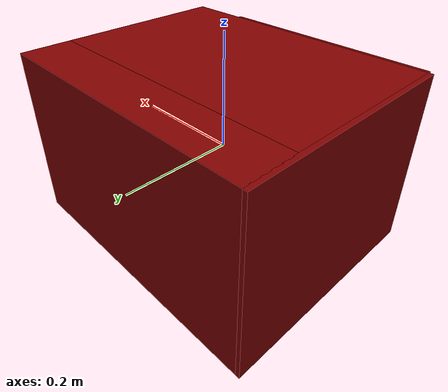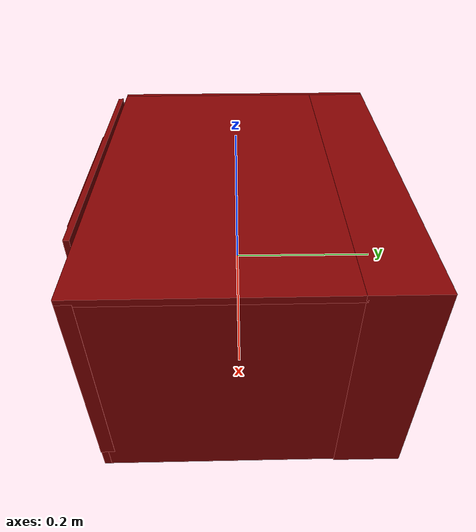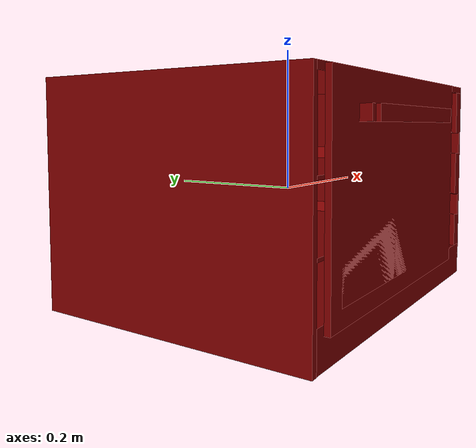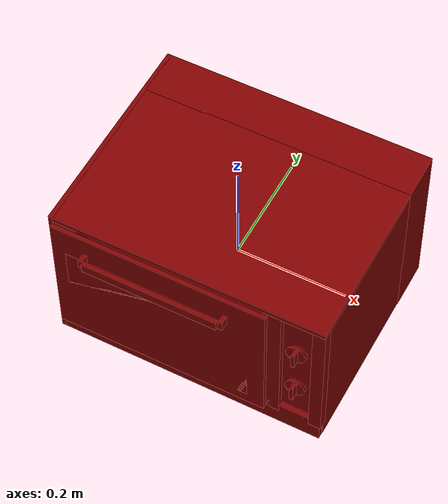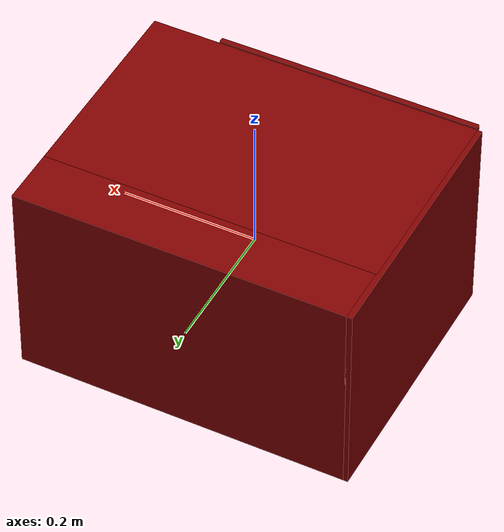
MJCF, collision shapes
<?xml version='1.0' encoding='UTF-8'?>
<mujoco model="model">
  <option timestep="0.002" gravity="0.0 0.0 -9.81"/>
  <compiler angle="radian"/>
  <asset>
    <mesh file="visuals/door.obj" name="door_vis"/>
    <mesh file="visuals/knob_temp.obj" name="knob_temp_vis"/>
    <mesh file="visuals/knob_time.obj" name="knob_time_vis"/>
    <mesh file="visuals/rack0.obj" name="rack0_vis"/>
    <mesh file="visuals/rack1.obj" name="rack1_vis"/>
    <mesh file="visuals/Body001.obj" name="Body001_vis"/>
    <mesh file="visuals/window.obj" name="window_vis"/>
    <texture file="visuals/T_BC001.png" name="Body001_material" type="2d"/>
    <material name="Body001_material" rgba="1 1 1 1.0" texture="Body001_material" shininess="0.141421377658844" specular="2"/>
    <texture file="visuals/T_BC001.png" name="door_material" type="2d"/>
    <material name="door_material" rgba="1 1 1 1.0" texture="door_material" shininess="0.141421377658844" specular="1"/>
    <texture file="visuals/T_BC001.png" name="window_material" type="2d"/>
    <material name="window_material" rgba="1 1 1 0.800000011920929" texture="window_material" shininess="0.5" specular="0.3103448502657381"/>
    <texture file="visuals/T_BC001.png" name="knob_temp_material" type="2d"/>
    <material name="knob_temp_material" rgba="1 1 1 1.0" texture="knob_temp_material" shininess="0.141421377658844" specular="0.3103448502657381"/>
    <texture file="visuals/T_BC001.png" name="knob_time_material" type="2d"/>
    <material name="knob_time_material" rgba="1 1 1 1.0" texture="knob_time_material" shininess="0.141421377658844" specular="0.3103448502657381"/>
    <texture file="visuals/T_BC001.png" name="rack0_material" type="2d"/>
    <material name="rack0_material" rgba="1 1 1 1.0" texture="rack0_material" shininess="0.141421377658844" specular="2"/>
    <texture file="visuals/T_BC001.png" name="rack1_material" type="2d"/>
    <material name="rack1_material" rgba="1 1 1 1.0" texture="rack1_material" shininess="0.141421377658844" specular="2"/>
  </asset>
  <default>
    <default class="visual">
      <geom conaffinity="0" contype="0" group="1" type="mesh"/>
    </default>
    <default class="collision">
      <geom group="0" rgba="0.5 0 0 0.5"/>
    </default>
    <default class="spawn">
      <geom group="0" rgba="1 1 1 0.5" contype="0" conaffinity="0"/>
      <site group="0" rgba="1 1 1 0.5"/>
    </default>
    <default class="region">
      <geom group="1" conaffinity="0" contype="0" rgba="0 1 0 0"/>
    </default>
  </default>
  <worldbody>
    <body>
      <body name="object">
        <geom mesh="Body001_vis" type="mesh" solimp="0.998 0.998 0.001" solref="0.001 1" friction="0.95 0.3 0.1" class="visual" material="Body001_material"/>
        <geom class="collision" type="box" pos="-0.2441130429506302 0.016248559579253197 5.9958576457574964e-05" size="0.00419982336461544 0.19757267832756042 0.15339186787605286" quat="1.0 0.0 0.0 0.0"/>
        <geom class="collision" type="box" pos="0.0035577856469899416 0.16968154907226562 5.9958576457574964e-05" size="0.24486888945102692 0.04413968697190285 0.15339186787605286" quat="1.0 0.0 0.0 0.0"/>
        <geom class="collision" type="box" pos="0.19376103579998016 -0.021811120212078094 -0.0015165776712819934" size="0.054665617644786835 0.14970235526561737 0.1484030783176422" quat="1.0 0.0 0.0 0.0"/>
        <geom class="collision" type="box" pos="0.15547572076320648 -0.17223013937473297 0.012488478794693947" size="0.015834785997867584 0.009101390838623047 0.13439801335334778" quat="1.0 0.0 0.0 0.0"/>
        <geom class="collision" type="box" pos="0.2371997833251953 -0.17223013937473297 0.012488478794693947" size="0.011356345377862453 0.009101390838623047 0.13439801335334778" quat="1.0 0.0 0.0 0.0"/>
        <geom class="collision" type="box" pos="0.0034546770621091127 -0.01811899244785309 -0.1288248598575592" size="0.24352025985717773 0.16321253776550293 0.023925891146063805" quat="1.0 0.0 0.0 0.0"/>
        <geom class="collision" type="box" pos="0.0035577856469899416 -0.026760555803775787 0.1486905813217163" size="0.24486888945102692 0.15465179085731506 0.004761239048093557" quat="1.0 0.0 0.0 0.0"/>
        <body name="door">
          <joint axis="1.0 0.0 0.0" pos="-0.048775337636470795 -0.18787136673927307 -0.11310728639364243" limited="true" name="door_joint" range="0.0 1.3707963267948966" type="hinge" damping="1" frictionloss="1" armature=".01" stiffness="0.2" springref="-2"/>
          <geom mesh="door_vis" type="mesh" solimp="0.998 0.998 0.001" solref="0.001 1" friction="0.95 0.3 0.1" class="visual" material="door_material"/>
          <geom class="collision" type="box" pos="-0.043600182980298996 -0.19160351157188416 0.019521430134773254" size="0.19398368895053864 0.0036813917104154825 0.13084100186824799" quat="1.0 0.0 0.0 0.0" name="door_main"/>
          <geom class="collision" type="box" pos="-0.0474492609500885 -0.21175143122673035 0.10493189841508865" size="0.122446209192276 0.004057358019053936 0.009291715919971466" quat="1.0 0.0 0.0 0.0" name="door_handle_main"/>
          <geom class="collision" type="box" pos="0.0796252191066742 -0.2035692036151886 0.10493189841508865" size="0.004057358484715223 0.007851452566683292 0.009291703812777996" quat="1.0 0.0 0.0 0.0"/>
          <geom class="collision" type="box" pos="-0.17500455677509308 -0.20344138145446777 0.10493189841508865" size="0.004057358950376511 0.00726819084957242 0.009291705675423145" quat="1.0 0.0 0.0 0.0"/>
          <body name="window">
            <geom mesh="window_vis" type="mesh" solimp="0.998 0.998 0.001" solref="0.001 1" friction="0.95 0.3 0.1" class="visual" material="window_material"/>
            <geom class="collision" type="box" pos="-0.0472261942923069 -0.19160351157188416 0.0007110745646059513" size="0.1658865213394165 0.0036813917104154825 0.09052855521440506" quat="1.0 0.0 0.0 0.0"/>
          </body>
        </body>
        <body name="knob_temp">
          <joint axis="0.0 1.0 0.0" pos="0.1982269287109375 -0.17756953835487366 0.06402279436588287" limited="true" name="knob_temp_joint" range="0.0 4.537856055185257" type="hinge" damping="0.05" armature="1" frictionloss="0.75"/>
          <geom mesh="knob_temp_vis" type="mesh" solimp="0.998 0.998 0.001" solref="0.001 1" friction="0.95 0.3 0.1" class="visual" material="knob_temp_material"/>
          <geom class="collision" type="box" pos="0.19860117137432098 -0.1873530149459839 0.0640273466706276" size="0.0034536204766482115 0.006564540322870016 0.015590326860547066" quat="1.0 0.0 0.0 0.0" name="knob_temp_main" friction="100 0.5 0.01"/>
          <geom class="collision" type="cylinder" pos="0.1980726718902588 -0.17784664034843445 0.06423473358154297" size="0.017978839576244354 0.0029833735898137093" quat="0.7071067094802856 0.7071068286895752 0.0 0.0" friction="100 0.5 0.01"/>
        </body>
        <body name="knob_time">
          <joint axis="0.0 1.0 0.0" pos="0.1982269287109375 -0.17756953835487366 -0.03266529738903046" limited="true" name="knob_time_joint" range="0.0 4.886921905584122" type="hinge" damping="0.05" armature="1" frictionloss="0.75"/>
          <geom mesh="knob_time_vis" type="mesh" solimp="0.998 0.998 0.001" solref="0.001 1" friction="0.95 0.3 0.1" class="visual" material="knob_time_material"/>
          <geom class="collision" type="box" pos="0.19860117137432098 -0.1873530149459839 -0.03247858211398125" size="0.0034536204766482115 0.006564540322870016 0.015952182933688164" quat="1.0 0.0 0.0 0.0" name="knob_time_main" friction="100 0.5 0.01"/>
          <geom class="collision" type="cylinder" pos="0.1980726718902588 -0.17784664034843445 -0.032568540424108505" size="0.017978839576244354 0.0029833735898137093" quat="0.7071067094802856 0.7071068286895752 0.0 0.0" friction="100 0.5 0.01"/>
        </body>
        <body name="rack0">
          <geom class="region" name="reg_rack0" type="box" pos="-0.052629951387643814 -0.02356836199760437 -0.008009344339370728" size="0.16890903732180595 0.12610694563388825 0.04178454896807671"/>
          <joint axis="0.0 -1.0 0.0" pos="-0.04997001960873604 -0.0227875504642725 -0.03988266363739967" limited="true" name="rack0_joint" range="0.0 0.23" type="slide" damping="1" frictionloss="1" armature=".01" stiffness="0.05"/>
          <geom mesh="rack0_vis" type="mesh" solimp="0.998 0.998 0.001" solref="0.001 1" friction="0.95 0.3 0.1" class="visual" material="rack0_material"/>
          <geom class="collision" type="box" pos="-0.05084526538848877 -0.02230246737599373 -0.05209459736943245" size="0.1735331416130066 0.1302265077829361 0.0024062246084213257" quat="1.0 0.0 0.0 0.0"/>
          <geom class="collision" type="box" pos="0.1256789267063141 -0.02230246737599373 -0.04503250867128372" size="0.010853913612663746 0.1302265077829361 0.002406227868050337" quat="0.9129273295402527 0.0 -0.408122181892395 0.0"/>
          <geom class="collision" type="box" pos="-0.22870148718357086 -0.02230246737599373 -0.04446806386113167" size="0.011601341888308525 0.1302265077829361 0.002406228333711624" quat="0.487621545791626 -0.0 -0.873055100440979 -0.0"/>
        </body>
        <body name="rack1">
          <geom class="region" name="reg_rack1" type="box" pos="-0.052629951387643814 -0.02356836199760437 0.08640640415251255" size="0.16890903732180595 0.12610694563388825 0.0472289210408926"/>
          <joint axis="0.0 -1.0 0.0" pos="-0.04997001960873604 -0.0227875504642725 0.04992767050862312" limited="true" name="rack1_joint" range="0.0 0.23" type="slide" damping="1" frictionloss="1" armature=".01" stiffness="0.05"/>
          <geom mesh="rack1_vis" type="mesh" solimp="0.998 0.998 0.001" solref="0.001 1" friction="0.95 0.3 0.1" class="visual" material="rack1_material"/>
          <geom class="collision" type="box" pos="-0.05084526538848877 -0.02230246737599373 0.03639897331595421" size="0.1735331416130066 0.1302265077829361 0.002406229730695486" quat="1.0 0.0 0.0 0.0"/>
          <geom class="collision" type="box" pos="0.12663137912750244 -0.02217262238264084 0.04547247663140297" size="0.012199101969599724 0.13035635650157928 0.002406227868050337" quat="0.9129273295402527 0.0 -0.408122181892395 0.0"/>
          <geom class="collision" type="box" pos="-0.22785645723342896 -0.02230246737599373 0.044808804988861084" size="0.011334135197103024 0.1302265077829361 0.0024062281008809805" quat="0.48012229800224304 -0.0 -0.8772015571594238 -0.0"/>
        </body>
        <geom class="region" name="reg_main" type="box" pos="-7.82310962677002e-08 0.009792514145374298 -2.2351741790771484e-08" size="0.25047988986968994 0.20687435364723206 0.1555785367488861"/>
      </body>
    </body>
  </worldbody>
  <actuator>
    <motor name="door_joint_actuator" joint="door_joint" gear="50"/>
    <motor name="knob_temp_joint_actuator" joint="knob_temp_joint" gear="50"/>
    <motor name="knob_time_joint_actuator" joint="knob_time_joint" gear="50"/>
    <motor name="rack0_joint_actuator" joint="rack0_joint" gear="50"/>
    <motor name="rack1_joint_actuator" joint="rack1_joint" gear="50"/>
  </actuator>
</mujoco>
